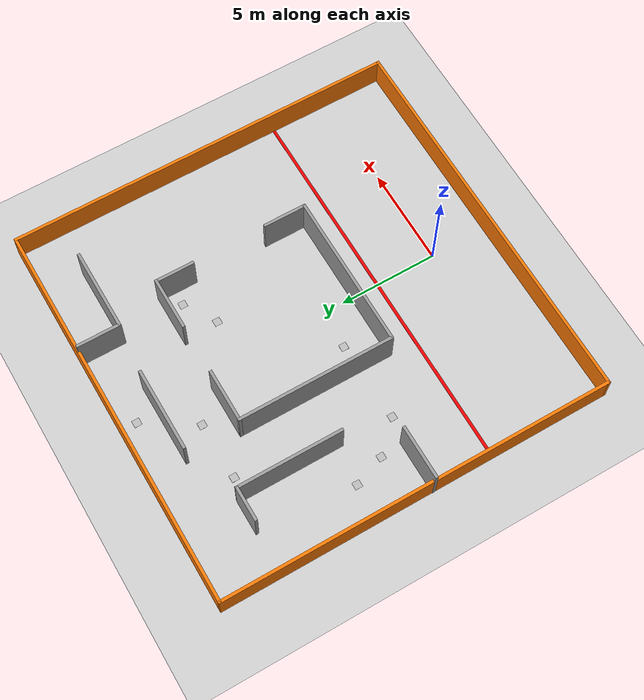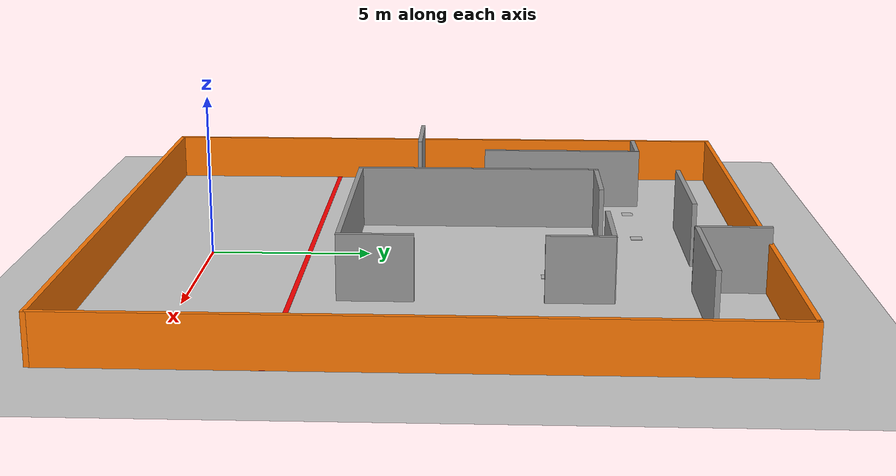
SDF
<sdf version="1.7">
 <world name="default">
  <model name="ground_plane">
   <static>1</static>
   <link name="link">
    <collision name="collision">
     <geometry><plane><normal>0 0 1</normal><size>100 100</size></plane></geometry>
     <surface>
      <contact><collide_bitmask>65535</collide_bitmask></contact>
      <friction><ode><mu>100</mu><mu2>50</mu2></ode></friction>
     </surface>
    </collision>
    <visual name="visual">
     <cast_shadows>0</cast_shadows>
     <geometry><plane><normal>0 0 1</normal><size>100 100</size></plane></geometry>
     <material>
      <script><uri>file://media/materials/scripts/gazebo.material</uri><name>Gazebo/Grey</name></script>
     </material>
    </visual>
   </link>
  </model>
  <model name="SAFMC_WALL_similar">
   <pose>0.020465 7 0 0 -0 0</pose>
   <link name="Wall_0">
    <collision name="Wall_0_Collision">
     <geometry><box><size>20 0.15 1.5</size></box></geometry>
     <pose>0 0 0.75 0 -0 0</pose>
    </collision>
    <visual name="Wall_0_Visual">
     <pose>0 0 0.75 0 -0 0</pose>
     <geometry><box><size>20 0.15 1.5</size></box></geometry>
     <material>
      <script><uri>file://media/materials/scripts/gazebo.material</uri><name>Gazebo/Grey</name></script>
      <ambient>0.996078 0.47451 0.0196078 1</ambient>
     </material>
     <meta><layer>0</layer></meta>
    </visual>
    <pose>-0.003 -9.925 0 0 -0 0</pose>
   </link>
   <link name="Wall_10">
    <collision name="Wall_10_Collision">
     <geometry><box><size>2.75 0.15 2</size></box></geometry>
     <pose>0 0 1 0 -0 0</pose>
    </collision>
    <visual name="Wall_10_Visual">
     <pose>0 0 1 0 -0 0</pose>
     <geometry><box><size>2.75 0.15 2</size></box></geometry>
     <material>
      <script><uri>file://media/materials/scripts/gazebo.material</uri><name>Gazebo/Grey</name></script>
      <ambient>0 0 0 1</ambient>
     </material>
     <meta><layer>0</layer></meta>
    </visual>
    <pose>-8.642 -0.751 0 0 -0 0</pose>
   </link>
   <link name="Wall_12">
    <collision name="Wall_12_Collision">
     <geometry><box><size>1.75 0.15 2</size></box></geometry>
     <pose>0 0 1 0 -0 0</pose>
    </collision>
    <visual name="Wall_12_Visual">
     <pose>0 0 1 0 -0 0</pose>
     <geometry><box><size>1.75 0.15 2</size></box></geometry>
     <material>
      <script><uri>file://media/materials/scripts/gazebo.material</uri><name>Gazebo/Grey</name></script>
      <ambient>0 0 0 1</ambient>
     </material>
     <meta><layer>0</layer></meta>
    </visual>
    <pose>-6.88992 6.92788 0 0 -0 0</pose>
   </link>
   <link name="Wall_13">
    <collision name="Wall_13_Collision">
     <geometry><box><size>5.40588 0.15 2</size></box></geometry>
     <pose>0 0 1 0 -0 0</pose>
    </collision>
    <visual name="Wall_13_Visual">
     <pose>0 0 1 0 -0 0</pose>
     <geometry><box><size>5.40588 0.15 2</size></box></geometry>
     <material>
      <script><uri>file://media/materials/scripts/gazebo.material</uri><name>Gazebo/Grey</name></script>
      <ambient>0 0 0 1</ambient>
     </material>
     <meta><layer>0</layer></meta>
    </visual>
    <pose>-6.05047 4.29994 0 0 -0 -1.5708</pose>
   </link>
   <link name="Wall_15">
    <collision name="Wall_15_Collision">
     <geometry><box><size>2.25 0.15 2</size></box></geometry>
     <pose>0 0 1 0 -0 0</pose>
    </collision>
    <visual name="Wall_15_Visual">
     <pose>0 0 1 0 -0 0</pose>
     <geometry><box><size>2.25 0.15 2</size></box></geometry>
     <material>
      <script><uri>file://media/materials/scripts/gazebo.material</uri><name>Gazebo/Grey</name></script>
      <ambient>0 0 0 1</ambient>
     </material>
     <meta><layer>0</layer></meta>
    </visual>
    <pose>3.3575 8.83 0 0 -0 -1.5708</pose>
   </link>
   <link name="Wall_18">
    <collision name="Wall_18_Collision">
     <geometry><box><size>4.198 0.15 2</size></box></geometry>
     <pose>0 0 1 0 -0 0</pose>
    </collision>
    <visual name="Wall_18_Visual">
     <pose>0 0 1 0 -0 0</pose>
     <geometry><box><size>4.198 0.15 2</size></box></geometry>
     <material>
      <script><uri>file://media/materials/scripts/gazebo.material</uri><name>Gazebo/Grey</name></script>
      <ambient>0 0 0 1</ambient>
     </material>
     <meta><layer>0</layer></meta>
    </visual>
    <pose>5.416 7.78 0 0 -0 0</pose>
   </link>
   <link name="Wall_2">
    <collision name="Wall_2_Collision">
     <geometry><box><size>20 0.15 1.5</size></box></geometry>
     <pose>0 0 0.75 0 -0 0</pose>
    </collision>
    <visual name="Wall_2_Visual">
     <pose>0 0 0.75 0 -0 0</pose>
     <geometry><box><size>20 0.15 1.5</size></box></geometry>
     <material>
      <script><uri>file://media/materials/scripts/gazebo.material</uri><name>Gazebo/Grey</name></script>
      <ambient>0.996078 0.47451 0.0196078 1</ambient>
     </material>
     <meta><layer>0</layer></meta>
    </visual>
    <pose>-9.928 -0 0 0 -0 1.5708</pose>
   </link>
   <link name="Wall_20">
    <collision name="Wall_20_Collision">
     <geometry><box><size>4.25 0.15 2</size></box></geometry>
     <pose>0 0 1 0 -0 0</pose>
    </collision>
    <visual name="Wall_20_Visual">
     <pose>0 0 1 0 -0 0</pose>
     <geometry><box><size>4.25 0.15 2</size></box></geometry>
     <material>
      <script><uri>file://media/materials/scripts/gazebo.material</uri><name>Gazebo/Grey</name></script>
      <ambient>0 0 0 1</ambient>
     </material>
     <meta><layer>0</layer></meta>
    </visual>
    <pose>-1.2353 8.03112 0 0 -0 0</pose>
   </link>
   <link name="Wall_22">
    <collision name="Wall_22_Collision">
     <geometry><box><size>8 0.15 2</size></box></geometry>
     <pose>0 0 1 0 -0 0</pose>
    </collision>
    <visual name="Wall_22_Visual">
     <pose>0 0 1 0 -0 0</pose>
     <geometry><box><size>8 0.15 2</size></box></geometry>
     <material>
      <script><uri>file://media/materials/scripts/gazebo.material</uri><name>Gazebo/Grey</name></script>
      <ambient>0 0 0 1</ambient>
     </material>
     <meta><layer>0</layer></meta>
    </visual>
    <pose>-3.36412 1.386 0 0 -0 -1.5708</pose>
   </link>
   <link name="Wall_24">
    <collision name="Wall_24_Collision">
     <geometry><box><size>8 0.15 2</size></box></geometry>
     <pose>0 0 1 0 -0 0</pose>
    </collision>
    <visual name="Wall_24_Visual">
     <pose>0 0 1 0 -0 0</pose>
     <geometry><box><size>8 0.15 2</size></box></geometry>
     <material>
      <script><uri>file://media/materials/scripts/gazebo.material</uri><name>Gazebo/Grey</name></script>
      <ambient>0 0 0 1</ambient>
     </material>
     <meta><layer>0</layer></meta>
    </visual>
    <pose>0.560883 -2.539 0 0 -0 0</pose>
   </link>
   <link name="Wall_26">
    <collision name="Wall_26_Collision">
     <geometry><box><size>2.25 0.15 2</size></box></geometry>
     <pose>0 0 1 0 -0 0</pose>
    </collision>
    <visual name="Wall_26_Visual">
     <pose>0 0 1 0 -0 0</pose>
     <geometry><box><size>2.25 0.15 2</size></box></geometry>
     <material>
      <script><uri>file://media/materials/scripts/gazebo.material</uri><name>Gazebo/Grey</name></script>
      <ambient>0 0 0 1</ambient>
     </material>
     <meta><layer>0</layer></meta>
    </visual>
    <pose>4.48588 -1.489 0 0 -0 1.5708</pose>
   </link>
   <link name="Wall_28">
    <collision name="Wall_28_Collision">
     <geometry><box><size>2.75 0.15 2</size></box></geometry>
     <pose>0 0 1 0 -0 0</pose>
    </collision>
    <visual name="Wall_28_Visual">
     <pose>0 0 1 0 -0 0</pose>
     <geometry><box><size>2.75 0.15 2</size></box></geometry>
     <material>
      <script><uri>file://media/materials/scripts/gazebo.material</uri><name>Gazebo/Grey</name></script>
      <ambient>0 0 0 1</ambient>
     </material>
     <meta><layer>0</layer></meta>
    </visual>
    <pose>-2.06412 5.311 0 0 -0 0</pose>
   </link>
   <link name="Wall_30">
    <collision name="Wall_30_Collision">
     <geometry><box><size>2.75 0.15 2</size></box></geometry>
     <pose>0 0 1 0 -0 0</pose>
    </collision>
    <visual name="Wall_30_Visual">
     <pose>0 0 1 0 -0 0</pose>
     <geometry><box><size>2.75 0.15 2</size></box></geometry>
     <material>
      <script><uri>file://media/materials/scripts/gazebo.material</uri><name>Gazebo/Grey</name></script>
      <ambient>0 0 0 1</ambient>
     </material>
     <meta><layer>0</layer></meta>
    </visual>
    <pose>3.16318 5.3137 0 0 -0 0</pose>
   </link>
   <link name="Wall_31">
    <collision name="Wall_31_Collision">
     <geometry><box><size>2 0.15 2</size></box></geometry>
     <pose>0 0 1 0 -0 0</pose>
    </collision>
    <visual name="Wall_31_Visual">
     <pose>0 0 1 0 -0 0</pose>
     <geometry><box><size>2 0.15 2</size></box></geometry>
     <material>
      <script><uri>file://media/materials/scripts/gazebo.material</uri><name>Gazebo/Grey</name></script>
      <ambient>0 0 0 1</ambient>
     </material>
     <meta><layer>0</layer></meta>
    </visual>
    <pose>4.46318 4.3624 0 0 -0 -1.5708</pose>
   </link>
   <link name="Wall_4">
    <collision name="Wall_4_Collision">
     <geometry><box><size>20 0.15 1.5</size></box></geometry>
     <pose>0 0 0.75 0 -0 0</pose>
    </collision>
    <visual name="Wall_4_Visual">
     <pose>0 0 0.75 0 -0 0</pose>
     <geometry><box><size>20 0.15 1.5</size></box></geometry>
     <material>
      <script><uri>file://media/materials/scripts/gazebo.material</uri><name>Gazebo/Grey</name></script>
      <ambient>0.996078 0.47451 0.0196078 1</ambient>
     </material>
     <meta><layer>0</layer></meta>
    </visual>
    <pose>-0.003 9.925 0 0 -0 0</pose>
   </link>
   <link name="Wall_6">
    <collision name="Wall_6_Collision">
     <geometry><box><size>20 0.15 1.5</size></box></geometry>
     <pose>0 0 0.75 0 -0 0</pose>
    </collision>
    <visual name="Wall_6_Visual">
     <pose>0 0 0.75 0 -0 0</pose>
     <geometry><box><size>20 0.15 1.5</size></box></geometry>
     <material>
      <script><uri>file://media/materials/scripts/gazebo.material</uri><name>Gazebo/Grey</name></script>
      <ambient>0.996078 0.47451 0.0196078 1</ambient>
     </material>
     <meta><layer>0</layer></meta>
    </visual>
    <pose>9.922 -0 0 0 -0 -1.5708</pose>
   </link>
   <link name="Wall_8">
    <collision name="Wall_8_Collision">
     <geometry><box><size>20 0.15 0.01</size></box></geometry>
     <pose>0 0 0.005 0 -0 0</pose>
    </collision>
    <visual name="Wall_8_Visual">
     <pose>0 0 0.005 0 -0 0</pose>
     <geometry><box><size>20 0.15 0.01</size></box></geometry>
     <material>
      <script><uri>file://media/materials/scripts/gazebo.material</uri><name>Gazebo/Grey</name></script>
      <ambient>1 0 0 1</ambient>
     </material>
     <meta><layer>0</layer></meta>
    </visual>
    <pose>0.017 -3.925 0 0 -0 0</pose>
   </link>
   <static>1</static>
  </model>
  <model name="VICTIM_0">
   <static>1</static>
   <link name="link">
    <collision name="collision"><geometry><box><size>0.3702 0.3702 0.01</size></box></geometry></collision>
    <visual name="visual">
     <cast_shadows>0</cast_shadows>
     <geometry><box><size>0.3702 0.3702 0.01</size></box></geometry>
     <material>
      <script>
       <uri>model://VICTIM_0/materials/scripts</uri>
       <uri>model://VICTIM_0/materials/textures</uri>
       <name>VICTIM_0</name>
      </script>
     </material>
    </visual>
   </link>
   <pose>-7.99453 8.99286 0 0 -0 0</pose>
  </model>
  <model name="VICTIM_1">
   <static>1</static>
   <link name="link">
    <collision name="collision"><geometry><box><size>0.3702 0.3702 0.01</size></box></geometry></collision>
    <visual name="visual">
     <cast_shadows>0</cast_shadows>
     <geometry><box><size>0.3702 0.3702 0.01</size></box></geometry>
     <material>
      <script>
       <uri>model://VICTIM_1/materials/scripts</uri>
       <uri>model://VICTIM_1/materials/textures</uri>
       <name>VICTIM_1</name>
      </script>
     </material>
    </visual>
   </link>
   <pose>-6.02398 5.96258 0 0 -0 0</pose>
  </model>
  <model name="VICTIM_2">
   <static>1</static>
   <link name="link">
    <collision name="collision"><geometry><box><size>0.3702 0.3702 0.01</size></box></geometry></collision>
    <visual name="visual">
     <cast_shadows>0</cast_shadows>
     <geometry><box><size>0.3702 0.3702 0.01</size></box></geometry>
     <material>
      <script>
       <uri>model://VICTIM_2/materials/scripts</uri>
       <uri>model://VICTIM_2/materials/textures</uri>
       <name>VICTIM_2</name>
      </script>
     </material>
    </visual>
   </link>
   <pose>-4.95306 13.5602 0 0 -0 0</pose>
  </model>
  <model name="VICTIM_3">
   <static>1</static>
   <link name="link">
    <collision name="collision"><geometry><box><size>0.3702 0.3702 0.01</size></box></geometry></collision>
    <visual name="visual">
     <cast_shadows>0</cast_shadows>
     <geometry><box><size>0.3702 0.3702 0.01</size></box></geometry>
     <material>
      <script>
       <uri>model://VICTIM_3/materials/scripts</uri>
       <uri>model://VICTIM_3/materials/textures</uri>
       <name>VICTIM_3</name>
      </script>
     </material>
    </visual>
   </link>
   <pose>-1.93234 6.08376 0 0 -0 0</pose>
  </model>
  <model name="VICTIM_4">
   <static>1</static>
   <link name="link">
    <collision name="collision"><geometry><box><size>0.3702 0.3702 0.01</size></box></geometry></collision>
    <visual name="visual">
     <cast_shadows>0</cast_shadows>
     <geometry><box><size>0.3702 0.3702 0.01</size></box></geometry>
     <material>
      <script>
       <uri>model://VICTIM_4/materials/scripts</uri>
       <uri>model://VICTIM_4/materials/textures</uri>
       <name>VICTIM_4</name>
      </script>
     </material>
    </visual>
   </link>
   <pose>3.72616 11.5146 0 0 -0 0</pose>
  </model>
  <model name="VICTIM_5">
   <static>1</static>
   <link name="link">
    <collision name="collision"><geometry><box><size>0.3702 0.3702 0.01</size></box></geometry></collision>
    <visual name="visual">
     <cast_shadows>0</cast_shadows>
     <geometry><box><size>0.3702 0.3702 0.01</size></box></geometry>
     <material>
      <script>
       <uri>model://VICTIM_5/materials/scripts</uri>
       <uri>model://VICTIM_5/materials/textures</uri>
       <name>VICTIM_5</name>
      </script>
     </material>
    </visual>
   </link>
   <pose>-0.464188 16.1086 0 0 -0 0</pose>
  </model>
  <model name="Danger_8">
   <static>1</static>
   <link name="link">
    <collision name="collision"><geometry><box><size>0.3702 0.3702 0.01</size></box></geometry></collision>
    <visual name="visual">
     <cast_shadows>0</cast_shadows>
     <geometry><box><size>0.3702 0.3702 0.01</size></box></geometry>
     <material>
      <script>
       <uri>model://Danger_8/materials/scripts</uri>
       <uri>model://Danger_8/materials/textures</uri>
       <name>Danger_8</name>
      </script>
     </material>
    </visual>
   </link>
   <pose>-7.41432 7.39219 0 0 -0 0</pose>
  </model>
  <model name="Danger_9">
   <static>1</static>
   <link name="link">
    <collision name="collision"><geometry><box><size>0.3702 0.3702 0.01</size></box></geometry></collision>
    <visual name="visual">
     <cast_shadows>0</cast_shadows>
     <geometry><box><size>0.3702 0.3702 0.01</size></box></geometry>
     <material>
      <script>
       <uri>model://Danger_9/materials/scripts</uri>
       <uri>model://Danger_9/materials/textures</uri>
       <name>Danger_9</name>
      </script>
     </material>
    </visual>
   </link>
   <pose>-2.03814 13.6009 0 0 -0 0</pose>
  </model>
  <model name="Danger_10">
   <static>1</static>
   <link name="link">
    <collision name="collision"><geometry><box><size>0.3702 0.3702 0.01</size></box></geometry></collision>
    <visual name="visual">
     <cast_shadows>0</cast_shadows>
     <geometry><box><size>0.3702 0.3702 0.01</size></box></geometry>
     <material>
      <script>
       <uri>model://Danger_10/materials/scripts</uri>
       <uri>model://Danger_10/materials/textures</uri>
       <name>Danger_10</name>
      </script>
     </material>
    </visual>
   </link>
   <pose>2.13077 10.5363 0 0 -0 0</pose>
  </model>
 </world>
</sdf>
